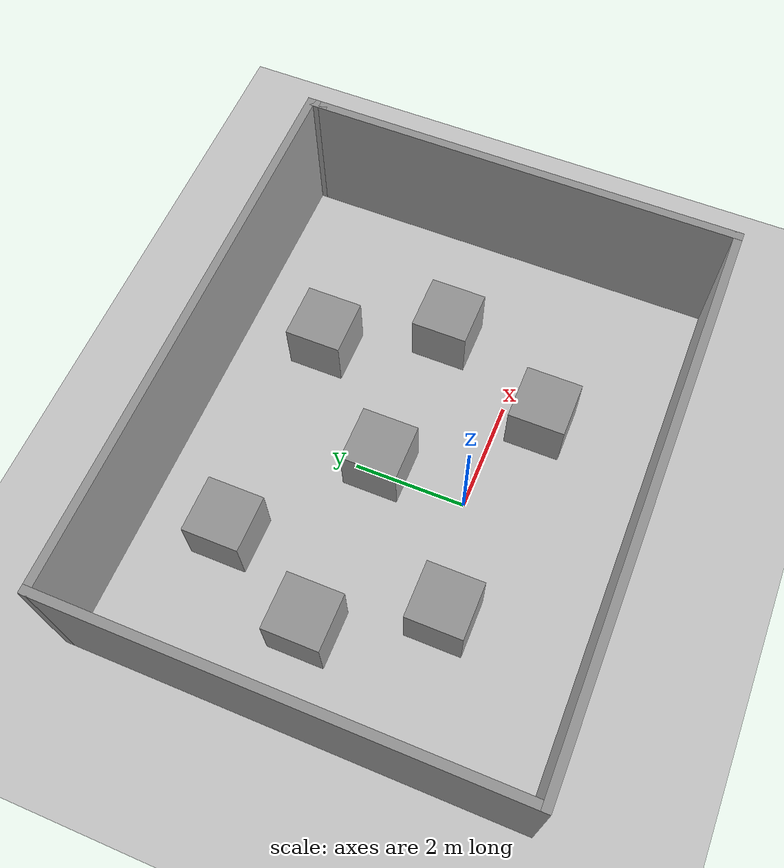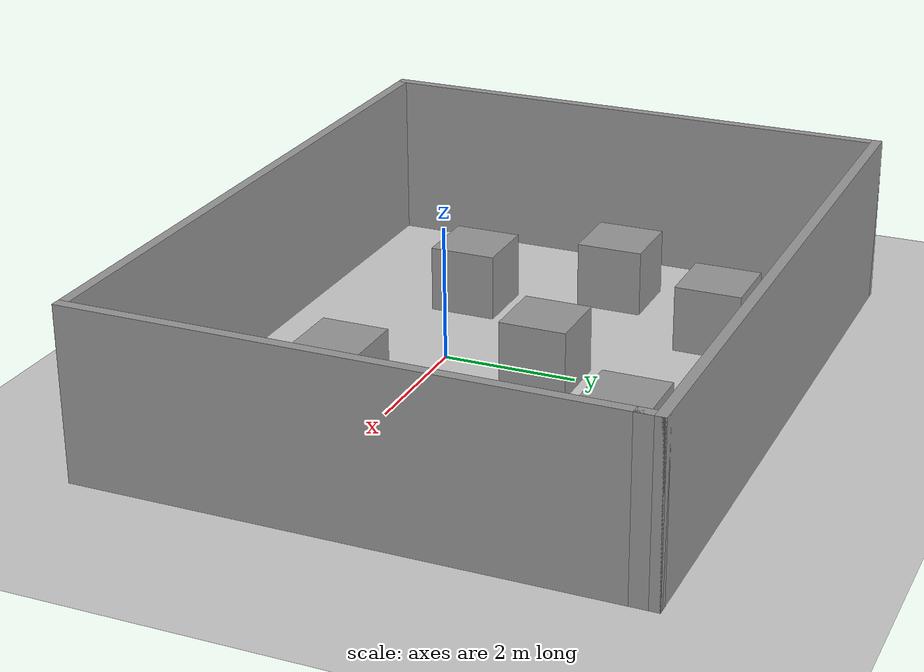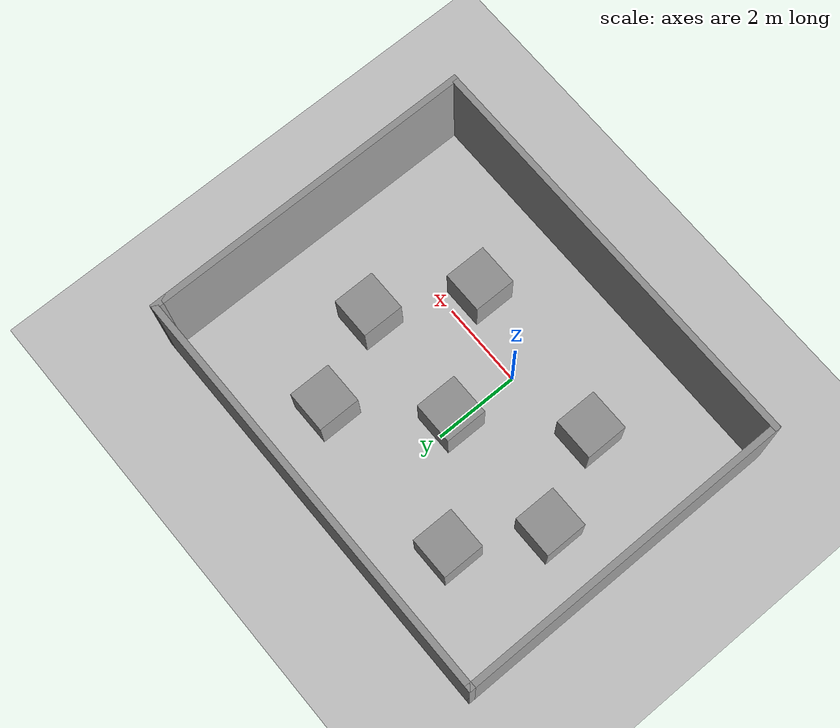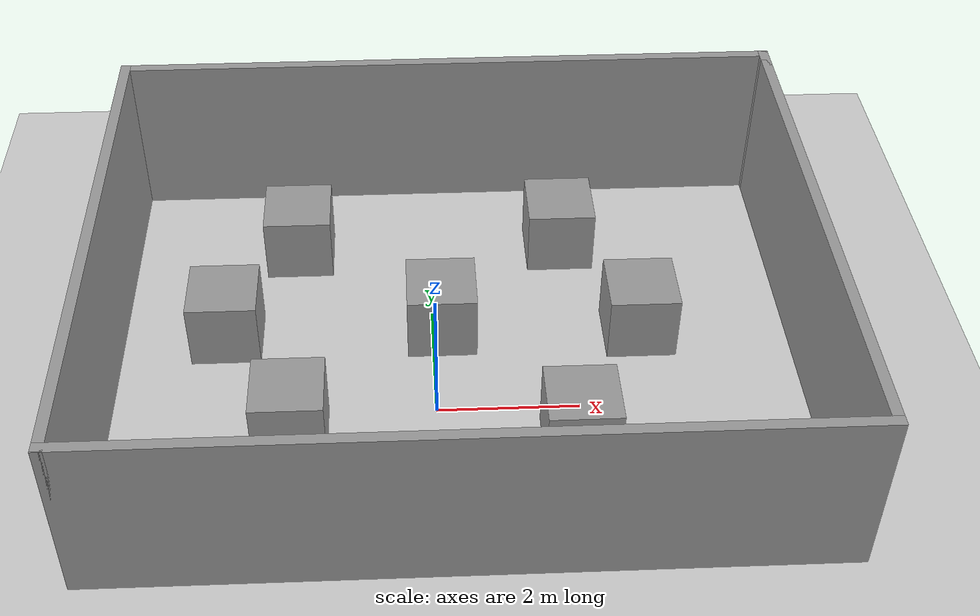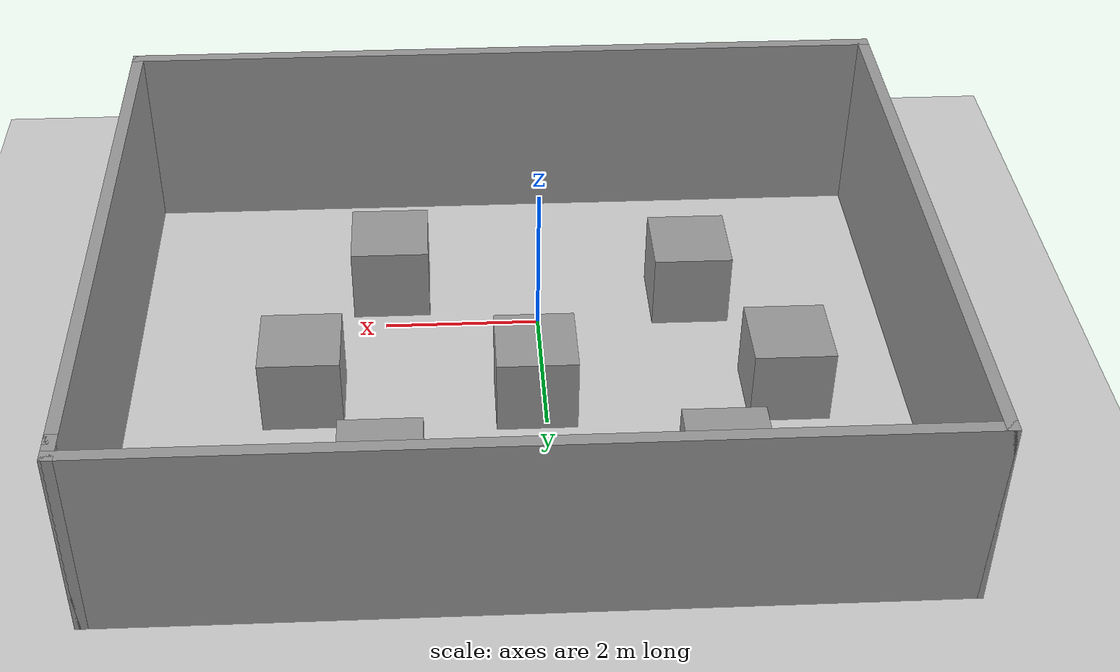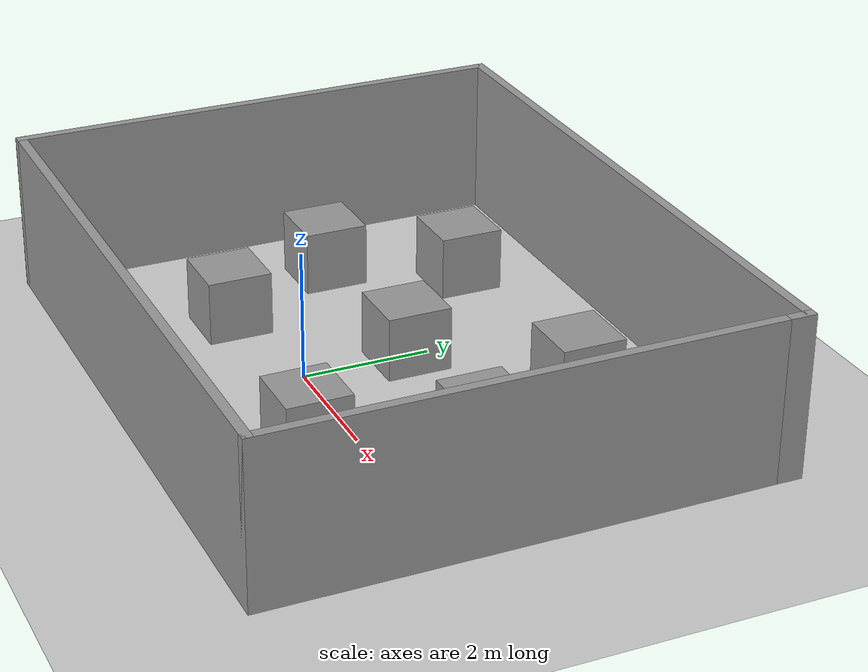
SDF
<sdf version="1.7">
 <world name="default">
  <light name="sun" type="directional">
   <pose>0 0 10 0 -0 0</pose>
   <diffuse>0.8 0.8 0.8 1</diffuse>
   <specular>0.2 0.2 0.2 1</specular>
   <attenuation>
    <range>1000</range>
    <constant>0.9</constant>
    <linear>0.01</linear>
    <quadratic>0.001</quadratic>
   </attenuation>
   <direction>-0.5 0.1 -0.9</direction>
   <spot><inner_angle>0</inner_angle><outer_angle>0</outer_angle><falloff>0</falloff></spot>
  </light>
  <model name="ground_plane">
   <static>1</static>
   <link name="link">
    <collision name="collision">
     <geometry><plane><normal>0 0 1</normal><size>100 100</size></plane></geometry>
     <surface>
      <contact><collide_bitmask>65535</collide_bitmask></contact>
      <friction><ode><mu>100</mu><mu2>50</mu2></ode></friction>
     </surface>
    </collision>
    <visual name="visual">
     <cast_shadows>0</cast_shadows>
     <geometry><plane><normal>0 0 1</normal><size>100 100</size></plane></geometry>
     <material>
      <script><uri>file://media/materials/scripts/gazebo.material</uri><name>Gazebo/Grey</name></script>
     </material>
    </visual>
   </link>
  </model>
  <gravity>0 0 -9.8</gravity>
  <magnetic_field>6e-06 2.3e-05 -4.2e-05</magnetic_field>
  <atmosphere type="adiabatic"/>
  <physics type="ode">
   <max_step_size>0.001</max_step_size>
   <real_time_factor>1</real_time_factor>
   <real_time_update_rate>1000</real_time_update_rate>
  </physics>
  <scene><ambient>0.4 0.4 0.4 1</ambient><background>0.7 0.7 0.7 1</background><shadows>1</shadows></scene>
  <audio><device>default</device></audio>
  <spherical_coordinates>
   <surface_model>EARTH_WGS84</surface_model>
   <latitude_deg>0</latitude_deg>
   <longitude_deg>0</longitude_deg>
   <elevation>0</elevation>
   <heading_deg>0</heading_deg>
  </spherical_coordinates>
  <model name="collision_avoidance_space">
   <pose>0.339552 1.12502 0 0 -0 0</pose>
   <link name="Wall_13">
    <collision name="Wall_13_Collision">
     <geometry><box><size>8 0.15 2.5</size></box></geometry>
     <pose>0 0 1.25 0 -0 0</pose>
    </collision>
    <visual name="Wall_13_Visual">
     <pose>0 0 1.25 0 -0 0</pose>
     <geometry><box><size>8 0.15 2.5</size></box></geometry>
     <material>
      <script><uri>file://media/materials/scripts/gazebo.material</uri><name>Gazebo/Grey</name></script>
      <ambient>1 1 1 1</ambient>
     </material>
     <meta><layer>0</layer></meta>
    </visual>
    <pose>-4.925 0 0 0 -0 -1.5708</pose>
   </link>
   <link name="Wall_14">
    <collision name="Wall_14_Collision">
     <geometry><box><size>10 0.15 2.5</size></box></geometry>
     <pose>0 0 1.25 0 -0 0</pose>
    </collision>
    <visual name="Wall_14_Visual">
     <pose>0 0 1.25 0 -0 0</pose>
     <geometry><box><size>10 0.15 2.5</size></box></geometry>
     <material>
      <script><uri>file://media/materials/scripts/gazebo.material</uri><name>Gazebo/Grey</name></script>
      <ambient>1 1 1 1</ambient>
     </material>
     <meta><layer>0</layer></meta>
    </visual>
    <pose>-0 -3.925 0 0 -0 0</pose>
   </link>
   <link name="Wall_15">
    <collision name="Wall_15_Collision">
     <geometry><box><size>7.75 0.15 2.5</size></box></geometry>
     <pose>0 0 1.25 0 -0 0</pose>
    </collision>
    <visual name="Wall_15_Visual">
     <pose>0 0 1.25 0 -0 0</pose>
     <geometry><box><size>7.75 0.15 2.5</size></box></geometry>
     <material>
      <script><uri>file://media/materials/scripts/gazebo.material</uri><name>Gazebo/Grey</name></script>
      <ambient>1 1 1 1</ambient>
     </material>
     <meta><layer>0</layer></meta>
    </visual>
    <pose>4.925 -0.125 0 0 -0 1.5708</pose>
   </link>
   <link name="Wall_17">
    <collision name="Wall_17_Collision">
     <geometry><box><size>10 0.15 2.5</size></box></geometry>
     <pose>0 0 1.25 0 -0 0</pose>
    </collision>
    <visual name="Wall_17_Visual">
     <pose>0 0 1.25 0 -0 0</pose>
     <geometry><box><size>10 0.15 2.5</size></box></geometry>
     <material>
      <script><uri>file://media/materials/scripts/gazebo.material</uri><name>Gazebo/Grey</name></script>
      <ambient>1 1 1 1</ambient>
     </material>
     <meta><layer>0</layer></meta>
    </visual>
    <pose>-0 3.925 0 0 -0 0</pose>
   </link>
   <link name="Wall_18">
    <collision name="Wall_18_Collision">
     <geometry><box><size>0.4 0.15 2.5</size></box></geometry>
     <pose>0 0 1.25 0 -0 0</pose>
    </collision>
    <visual name="Wall_18_Visual">
     <pose>0 0 1.25 0 -0 0</pose>
     <geometry><box><size>0.4 0.15 2.5</size></box></geometry>
     <material>
      <script><uri>file://media/materials/scripts/gazebo.material</uri><name>Gazebo/Grey</name></script>
      <ambient>1 1 1 1</ambient>
     </material>
     <meta><layer>0</layer></meta>
    </visual>
    <pose>4.925 3.8 0 0 -0 -1.5708</pose>
   </link>
   <static>1</static>
  </model>
  <model name="unit_box">
   <pose>-1.99999 -0.402213 0.499995 0 1e-05 0</pose>
   <link name="link">
    <inertial>
     <mass>1</mass>
     <inertia>
      <ixx>0.166667</ixx>
      <ixy>0</ixy>
      <ixz>0</ixz>
      <iyy>0.166667</iyy>
      <iyz>0</iyz>
      <izz>0.166667</izz>
     </inertia>
    </inertial>
    <collision name="collision"><geometry><box><size>1 1 1</size></box></geometry></collision>
    <visual name="visual">
     <geometry><box><size>1 1 1</size></box></geometry>
     <material>
      <script><name>Gazebo/Grey</name><uri>file://media/materials/scripts/gazebo.material</uri></script>
     </material>
    </visual>
   </link>
  </model>
  <model name="unit_box_0">
   <pose>0.122837 1.59726 0.499995 1e-05 -0 0</pose>
   <link name="link">
    <inertial>
     <mass>1</mass>
     <inertia>
      <ixx>0.166667</ixx>
      <ixy>0</ixy>
      <ixz>0</ixz>
      <iyy>0.166667</iyy>
      <iyz>0</iyz>
      <izz>0.166667</izz>
     </inertia>
    </inertial>
    <collision name="collision"><geometry><box><size>1 1 1</size></box></geometry></collision>
    <visual name="visual">
     <geometry><box><size>1 1 1</size></box></geometry>
     <material>
      <script><name>Gazebo/Grey</name><uri>file://media/materials/scripts/gazebo.material</uri></script>
     </material>
    </visual>
   </link>
  </model>
  <model name="unit_box_1">
   <pose>1.92392 -0.710218 0.499995 -1e-05 0 0</pose>
   <link name="link">
    <inertial>
     <mass>1</mass>
     <inertia>
      <ixx>0.166667</ixx>
      <ixy>0</ixy>
      <ixz>0</ixz>
      <iyy>0.166667</iyy>
      <iyz>0</iyz>
      <izz>0.166667</izz>
     </inertia>
    </inertial>
    <collision name="collision"><geometry><box><size>1 1 1</size></box></geometry></collision>
    <visual name="visual">
     <geometry><box><size>1 1 1</size></box></geometry>
     <material>
      <script><name>Gazebo/Grey</name><uri>file://media/materials/scripts/gazebo.material</uri></script>
     </material>
    </visual>
   </link>
  </model>
  <model name="unit_box_2">
   <pose>2 3.45662 0.499995 0 1e-05 0</pose>
   <link name="link">
    <inertial>
     <mass>1</mass>
     <inertia>
      <ixx>0.166667</ixx>
      <ixy>0</ixy>
      <ixz>0</ixz>
      <iyy>0.166667</iyy>
      <iyz>0</iyz>
      <izz>0.166667</izz>
     </inertia>
    </inertial>
    <collision name="collision"><geometry><box><size>1 1 1</size></box></geometry></collision>
    <visual name="visual">
     <geometry><box><size>1 1 1</size></box></geometry>
     <material>
      <script><name>Gazebo/Grey</name><uri>file://media/materials/scripts/gazebo.material</uri></script>
     </material>
    </visual>
   </link>
  </model>
  <model name="unit_box_3">
   <pose>-1.99999 3.45268 0.499995 0 1e-05 0</pose>
   <link name="link">
    <inertial>
     <mass>1</mass>
     <inertia>
      <ixx>0.166667</ixx>
      <ixy>0</ixy>
      <ixz>0</ixz>
      <iyy>0.166667</iyy>
      <iyz>0</iyz>
      <izz>0.166667</izz>
     </inertia>
    </inertial>
    <collision name="collision"><geometry><box><size>1 1 1</size></box></geometry></collision>
    <visual name="visual">
     <geometry><box><size>1 1 1</size></box></geometry>
     <material>
      <script><name>Gazebo/Grey</name><uri>file://media/materials/scripts/gazebo.material</uri></script>
     </material>
    </visual>
   </link>
  </model>
  <model name="unit_box_4">
   <pose>-3 1.57794 0.499995 -1e-05 -0 0</pose>
   <link name="link">
    <inertial>
     <mass>1</mass>
     <inertia>
      <ixx>0.166667</ixx>
      <ixy>0</ixy>
      <ixz>0</ixz>
      <iyy>0.166667</iyy>
      <iyz>0</iyz>
      <izz>0.166667</izz>
     </inertia>
    </inertial>
    <collision name="collision"><geometry><box><size>1 1 1</size></box></geometry></collision>
    <visual name="visual">
     <geometry><box><size>1 1 1</size></box></geometry>
     <material>
      <script><name>Gazebo/Grey</name><uri>file://media/materials/scripts/gazebo.material</uri></script>
     </material>
    </visual>
   </link>
  </model>
  <model name="unit_box_5">
   <pose>3 1.47118 0.5 0 -0 0</pose>
   <link name="link">
    <inertial>
     <mass>1</mass>
     <inertia>
      <ixx>0.166667</ixx>
      <ixy>0</ixy>
      <ixz>0</ixz>
      <iyy>0.166667</iyy>
      <iyz>0</iyz>
      <izz>0.166667</izz>
     </inertia>
    </inertial>
    <collision name="collision"><geometry><box><size>1 1 1</size></box></geometry></collision>
    <visual name="visual">
     <geometry><box><size>1 1 1</size></box></geometry>
     <material>
      <script><name>Gazebo/Grey</name><uri>file://media/materials/scripts/gazebo.material</uri></script>
     </material>
    </visual>
   </link>
  </model>
 </world>
</sdf>
